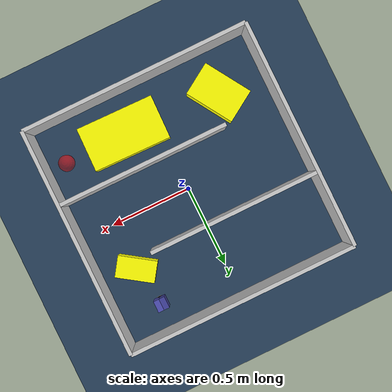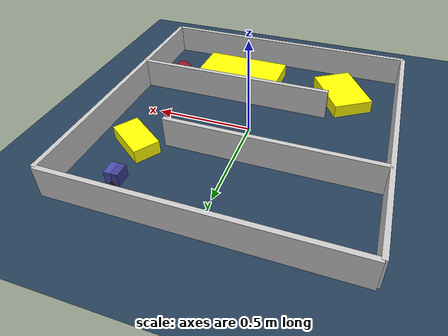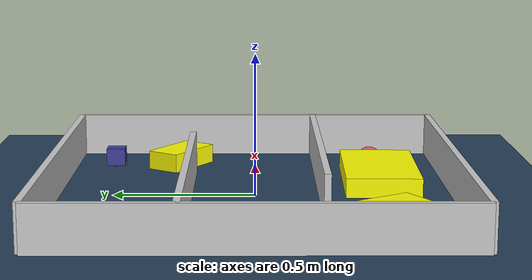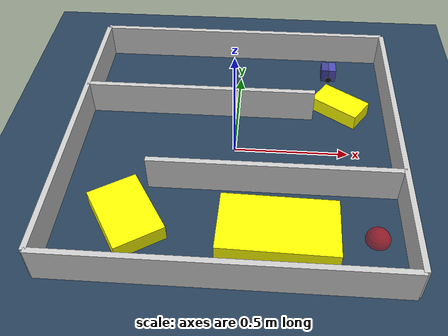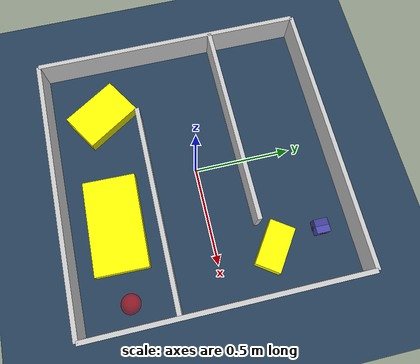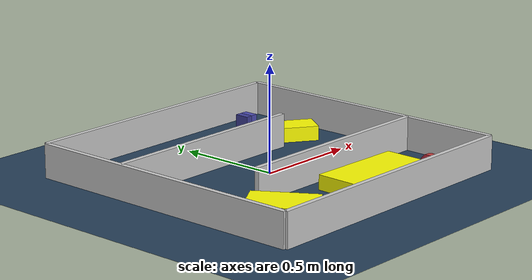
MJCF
<?xml version='1.0' encoding='utf-8'?>
<mujoco model="generated_environment">
  <option timestep="0.002" integrator="implicitfast" cone="elliptic" iterations="100" gravity="0 0 -9.81" />
  <default>
    <geom density="1" />
  </default>
  <asset>
    <texture builtin="gradient" height="3072" rgb1="0.3 0.5 0.7" rgb2="0 0 0" type="skybox" width="512" />
    <texture builtin="checker" height="300" mark="edge" markrgb="0.8 0.8 0.8" name="groundplane" rgb1="0.2 0.3 0.4" rgb2="0.1 0.2 0.3" type="2d" width="300" />
    <material name="groundplane" reflectance="0.2" texrepeat="5 5" texture="groundplane" texuniform="true" />
    <material name="robot" rgba="1.0 1.0 0.0 1.0" />
  </asset>
  <worldbody>
    <light dir="0 0 -1" directional="true" pos="0 0 1.5" />
    <geom condim="4" friction="0.5 0.005 0.001" material="groundplane" name="floor" size="0 0 0.05" type="plane" />
    <body name="walls">
      <geom name="wall_1" condim="4" pos="-0.699000 0.000000 0.080000" rgba="0.800000011920929 0.800000011920929 0.800000011920929 1.0" size="0.011650 0.699000 0.080000" type="box" />
      <geom name="wall_2" condim="4" pos="0.699000 0.000000 0.080000" rgba="0.800000011920929 0.800000011920929 0.800000011920929 1.0" size="0.011650 0.699000 0.080000" type="box" />
      <geom name="wall_3" condim="4" pos="0.000000 -0.699000 0.080000" rgba="0.800000011920929 0.800000011920929 0.800000011920929 1.0" size="0.699000 0.011650 0.080000" type="box" />
      <geom name="wall_4" condim="4" pos="0.000000 0.699000 0.080000" rgba="0.800000011920929 0.800000011920929 0.800000011920929 1.0" size="0.699000 0.011650 0.080000" type="box" />
      <geom name="wall_5" condim="4" pos="0.174750 -0.233000 0.080000" rgba="0.800000011920929 0.800000011920929 0.800000011920929 1.0" size="0.524250 0.011650 0.080000" type="box" />
      <geom name="wall_6" condim="4" pos="-0.174750 0.233000 0.080000" rgba="0.800000011920929 0.800000011920929 0.800000011920929 1.0" size="0.524250 0.011650 0.080000" type="box" />
    </body>
    <body name="car" pos="0.43500000000000016 0.5350000000000003 0.010000">
      <freejoint name="car_freejoint" />
      <inertial pos="0.000000 0 0.037500" mass="0.350000" diaginertia="0.000266 0.000266 0.000286" />
      <geom name="front_chassis_collision" type="box" pos="0.017500 0 0.037500" size="0.017500 0.035000 0.032500" rgba="0.3 0.3 0.7 1" />
      <geom name="rear_chassis_collision" type="box" pos="-0.017500 0 0.037500" size="0.017500 0.035000 0.032500" rgba="0.25 0.25 0.6 1" />
      <geom name="front_marker" type="box" pos="0.034000 0 0.050500" size="0.002000 0.015000 0.010000" rgba="1.0 0.2 0.2 1" contype="0" conaffinity="0" />
      <body name="rear_support_body" pos="-0.030000 0.000000 0.002500">
        <joint name="rear_caster_joint" type="ball" damping="0.0001" />
        <inertial pos="0 0 0" mass="0.025000" diaginertia="0.000001 0.000001 0.000001" />
        <geom name="rear_support" type="sphere" pos="0 0 0" size="0.002500" friction="0.000000 0.000000 0.000000" rgba="0.7 0.1 0.1 1" />
      </body>
      <body name="front_support_body" pos="0.030000 0.000000 0.002500">
        <joint name="front_caster_joint" type="ball" damping="0.0001" />
        <inertial pos="0 0 0" mass="0.025000" diaginertia="0.000001 0.000001 0.000001" />
        <geom name="front_support" type="sphere" pos="0 0 0" size="0.002500" friction="0.000000 0.000000 0.000000" rgba="0.1 0.7 0.1 1" />
      </body>
      <body name="left_wheel" pos="0.000000 0.037500 0.015000">
        <inertial pos="0 0 0" mass="0.050000" diaginertia="0.000003 0.000006 0.000003" />
        <joint name="left_wheel_joint" type="hinge" axis="0 1 0" />
        <geom name="left_wheel_collision" type="cylinder" size="0.015000 0.000500" euler="90 0 0" rgba="0.1 0.1 0.1 1" />
      </body>
      <body name="right_wheel" pos="0.000000 -0.037500 0.015000">
        <inertial pos="0 0 0" mass="0.050000" diaginertia="0.000003 0.000006 0.000003" />
        <joint name="right_wheel_joint" type="hinge" axis="0 1 0" />
        <geom name="right_wheel_collision" type="cylinder" size="0.015000 0.000500" euler="90 0 0" rgba="0.1 0.1 0.1 1" />
      </body>
    </body>
    <body name="obstacle_0_movable">
      <geom name="obstacle_0_movable" condim="4" pos="-0.4036528256367358 -0.42656666119775766 0.035" euler="0 0 302.0772300217315" friction="0.0 0.005 0.001" rgba="1 1 0 1" size="0.15457876204645674 0.10553399146211401 0.035" type="box" mass="0.1" />
      <joint type="free" />
    </body>
    <body name="obstacle_1_movable">
      <geom name="obstacle_1_movable" condim="4" pos="0.19822417239612122 -0.45546409246536346 0.035" euler="0 0 358.6883863521745" friction="0.0 0.005 0.001" rgba="1 1 0 1" size="0.2378240539131592 0.13408210383557578 0.035" type="box" mass="0.1" />
      <joint type="free" />
    </body>
    <body name="obstacle_2_movable">
      <geom name="obstacle_2_movable" condim="4" pos="0.47831242953286535 0.28782301095570917 0.035" euler="0 0 55.635907584706395" friction="0.0 0.005 0.001" rgba="1 1 0 1" size="0.0649696424675618 0.11710266089878572 0.035" type="box" mass="0.1" />
      <joint type="free" />
    </body>
    <site name="goal" type="sphere" pos="0.5850000000000001 -0.45499999999999996 0.0" size="0.05" rgba="1 0 0 0.5" />
  </worldbody>
  <actuator>
    <velocity name="left_wheel_drive" joint="left_wheel_joint" ctrlrange="-25.000000 25.000000" kv="0.750000" forcerange="-0.300000 0.300000" />
    <velocity name="right_wheel_drive" joint="right_wheel_joint" ctrlrange="-25.000000 25.000000" kv="0.750000" forcerange="-0.300000 0.300000" />
  </actuator>
</mujoco>
